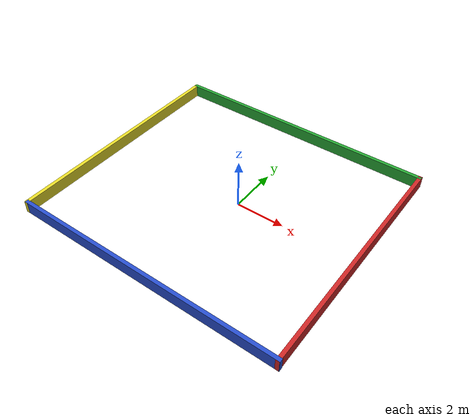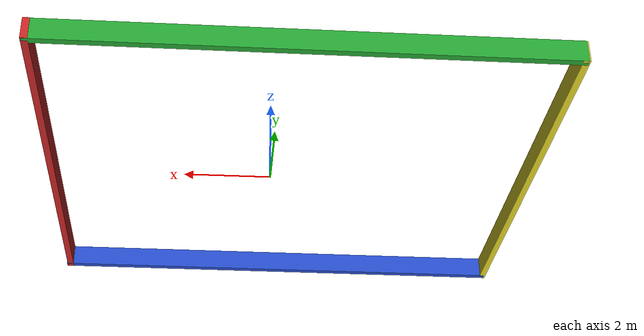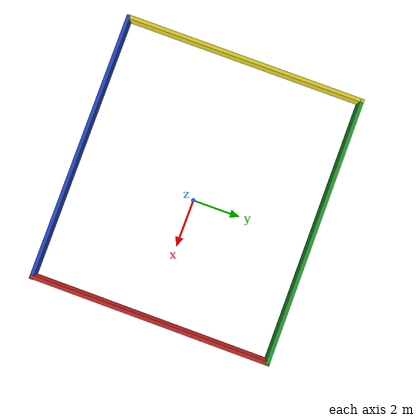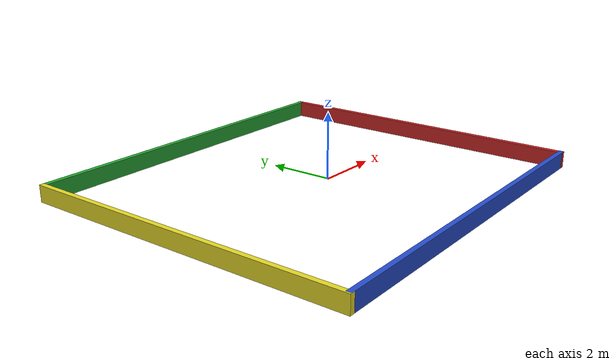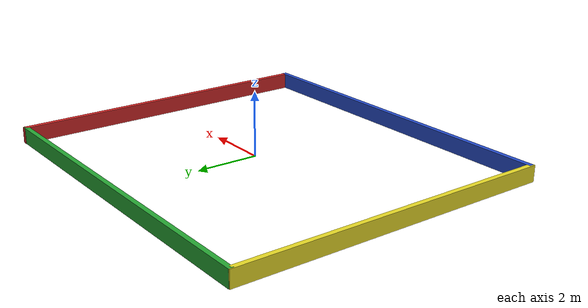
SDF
<?xml version='1.0'?>
<sdf version='1.7'>
  <model name='parede'>
    <link name='Wall_0'>
      <pose>-0.473327 -4.99675 0 0 -0 0</pose>
      <self_collide>0</self_collide>
      <enable_wind>0</enable_wind>
      <kinematic>0</kinematic>
      <gravity>1</gravity>
      <inertial>
        <mass>0.876022</mass>
        <pose>0 0 0 0 -0 0</pose>
        <inertia>
          <ixx>0.019893</ixx>
          <ixy>0</ixy>
          <ixz>0</ixz>
          <iyy>9.26886</iyy>
          <iyz>0</iyz>
          <izz>9.25225</izz>
        </inertia>
      </inertial>
      <visual name='Wall_0_Visual'>
        <pose>0 0 0.25 0 -0 0</pose>
        <geometry>
          <box>
            <size>11.2569 0.15 0.5</size>
          </box>
        </geometry>
        <material>
          <script>
            <uri>file://media/materials/scripts/gazebo.material</uri>
            <name>Gazebo/Blue</name>
          </script>
          <ambient>0 0.5 1 1</ambient>
          <shader type='pixel'>
            <normal_map>__default__</normal_map>
          </shader>
          <diffuse>0 0.5 1 1</diffuse>
          <specular>0 0.5 1 1</specular>
          <emissive>0 0.5 1 1</emissive>
        </material>
        <meta>
          <layer>0</layer>
        </meta>
        <transparency>0</transparency>
        <cast_shadows>1</cast_shadows>
      </visual>
      <collision name='Wall_0_Collision'>
        <laser_retro>0</laser_retro>
        <max_contacts>10</max_contacts>
        <pose>0 0 0.25 0 -0 0</pose>
        <geometry>
          <box>
            <size>11.2569 0.15 0.5</size>
          </box>
        </geometry>
        <surface>
          <friction>
            <ode>
              <mu>1</mu>
              <mu2>1</mu2>
              <fdir1>0 0 0</fdir1>
              <slip1>0</slip1>
              <slip2>0</slip2>
            </ode>
            <torsional>
              <coefficient>1</coefficient>
              <patch_radius>0</patch_radius>
              <surface_radius>0</surface_radius>
              <use_patch_radius>1</use_patch_radius>
              <ode>
                <slip>0</slip>
              </ode>
            </torsional>
          </friction>
          <bounce>
            <restitution_coefficient>0</restitution_coefficient>
            <threshold>1e+06</threshold>
          </bounce>
          <contact>
            <collide_without_contact>0</collide_without_contact>
            <collide_without_contact_bitmask>1</collide_without_contact_bitmask>
            <collide_bitmask>1</collide_bitmask>
            <ode>
              <soft_cfm>0</soft_cfm>
              <soft_erp>0.2</soft_erp>
              <kp>1e+13</kp>
              <kd>1</kd>
              <max_vel>0.01</max_vel>
              <min_depth>0</min_depth>
            </ode>
            <bullet>
              <split_impulse>1</split_impulse>
              <split_impulse_penetration_threshold>-0.01</split_impulse_penetration_threshold>
              <soft_cfm>0</soft_cfm>
              <soft_erp>0.2</soft_erp>
              <kp>1e+13</kp>
              <kd>1</kd>
            </bullet>
          </contact>
        </surface>
      </collision>
    </link>
    <link name='Wall_1'>
      <pose>-0.493247 5.00078 0 0 -0 3.14</pose>
      <self_collide>0</self_collide>
      <enable_wind>0</enable_wind>
      <kinematic>0</kinematic>
      <gravity>1</gravity>
      <inertial>
        <mass>1</mass>
        <pose>0 0 0 0 -0 0</pose>
        <inertia>
          <ixx>1</ixx>
          <ixy>0</ixy>
          <ixz>0</ixz>
          <iyy>1</iyy>
          <iyz>0</iyz>
          <izz>1</izz>
        </inertia>
      </inertial>
      <visual name='Wall_1_Visual'>
        <pose>0 0 0.25 0 -0 0</pose>
        <geometry>
          <box>
            <size>11.2569 0.15 0.5</size>
          </box>
        </geometry>
        <material>
          <script>
            <uri>file://media/materials/scripts/gazebo.material</uri>
            <name>Gazebo/Green</name>
          </script>
          <ambient>0 1 0 1</ambient>
          <shader type='pixel'>
            <normal_map>__default__</normal_map>
          </shader>
          <lighting>1</lighting>
          <emissive>0 1 0 1</emissive>
          <diffuse>0 1 0 1</diffuse>
          <specular>0 1 0 1</specular>
        </material>
        <meta>
          <layer>0</layer>
        </meta>
        <transparency>0</transparency>
        <cast_shadows>1</cast_shadows>
      </visual>
      <collision name='Wall_1_Collision'>
        <laser_retro>0</laser_retro>
        <max_contacts>10</max_contacts>
        <pose>0 0 0.25 0 -0 0</pose>
        <geometry>
          <box>
            <size>11.2569 0.15 0.5</size>
          </box>
        </geometry>
        <surface>
          <friction>
            <ode>
              <mu>1</mu>
              <mu2>1</mu2>
              <fdir1>0 0 0</fdir1>
              <slip1>0</slip1>
              <slip2>0</slip2>
            </ode>
            <torsional>
              <coefficient>1</coefficient>
              <patch_radius>0</patch_radius>
              <surface_radius>0</surface_radius>
              <use_patch_radius>1</use_patch_radius>
              <ode>
                <slip>0</slip>
              </ode>
            </torsional>
          </friction>
          <bounce>
            <restitution_coefficient>0</restitution_coefficient>
            <threshold>1e+06</threshold>
          </bounce>
          <contact>
            <collide_without_contact>0</collide_without_contact>
            <collide_without_contact_bitmask>1</collide_without_contact_bitmask>
            <collide_bitmask>1</collide_bitmask>
            <ode>
              <soft_cfm>0</soft_cfm>
              <soft_erp>0.2</soft_erp>
              <kp>1e+13</kp>
              <kd>1</kd>
              <max_vel>0.01</max_vel>
              <min_depth>0</min_depth>
            </ode>
            <bullet>
              <split_impulse>1</split_impulse>
              <split_impulse_penetration_threshold>-0.01</split_impulse_penetration_threshold>
              <soft_cfm>0</soft_cfm>
              <soft_erp>0.2</soft_erp>
              <kp>1e+13</kp>
              <kd>1</kd>
            </bullet>
          </contact>
        </surface>
      </collision>
    </link>
    <link name='Wall_2'>
      <pose>5.06978 0.001139 0 0 -0 1.57</pose>
      <self_collide>0</self_collide>
      <enable_wind>0</enable_wind>
      <kinematic>0</kinematic>
      <gravity>1</gravity>
      <inertial>
        <mass>1</mass>
        <pose>0 0 0 0 -0 0</pose>
        <inertia>
          <ixx>1</ixx>
          <ixy>0</ixy>
          <ixz>0</ixz>
          <iyy>1</iyy>
          <iyz>0</iyz>
          <izz>1</izz>
        </inertia>
      </inertial>
      <visual name='Wall_2_Visual'>
        <pose>0 0 0.25 0 -0 0</pose>
        <geometry>
          <box>
            <size>10.15 0.15 0.5</size>
          </box>
        </geometry>
        <material>
          <script>
            <uri>file://media/materials/scripts/gazebo.material</uri>
            <name>Gazebo/Red</name>
          </script>
          <ambient>1 0 0 1</ambient>
          <shader type='pixel'>
            <normal_map>__default__</normal_map>
          </shader>
          <diffuse>1 0 0 1</diffuse>
          <specular>1 0 0 1</specular>
          <emissive>1 0 0 1</emissive>
        </material>
        <meta>
          <layer>0</layer>
        </meta>
        <transparency>0</transparency>
        <cast_shadows>1</cast_shadows>
      </visual>
      <collision name='Wall_2_Collision'>
        <laser_retro>0</laser_retro>
        <max_contacts>10</max_contacts>
        <pose>0 0 0.25 0 -0 0</pose>
        <geometry>
          <box>
            <size>10.15 0.15 0.5</size>
          </box>
        </geometry>
        <surface>
          <friction>
            <ode>
              <mu>1</mu>
              <mu2>1</mu2>
              <fdir1>0 0 0</fdir1>
              <slip1>0</slip1>
              <slip2>0</slip2>
            </ode>
            <torsional>
              <coefficient>1</coefficient>
              <patch_radius>0</patch_radius>
              <surface_radius>0</surface_radius>
              <use_patch_radius>1</use_patch_radius>
              <ode>
                <slip>0</slip>
              </ode>
            </torsional>
          </friction>
          <bounce>
            <restitution_coefficient>0</restitution_coefficient>
            <threshold>1e+06</threshold>
          </bounce>
          <contact>
            <collide_without_contact>0</collide_without_contact>
            <collide_without_contact_bitmask>1</collide_without_contact_bitmask>
            <collide_bitmask>1</collide_bitmask>
            <ode>
              <soft_cfm>0</soft_cfm>
              <soft_erp>0.2</soft_erp>
              <kp>1e+13</kp>
              <kd>1</kd>
              <max_vel>0.01</max_vel>
              <min_depth>0</min_depth>
            </ode>
            <bullet>
              <split_impulse>1</split_impulse>
              <split_impulse_penetration_threshold>-0.01</split_impulse_penetration_threshold>
              <soft_cfm>0</soft_cfm>
              <soft_erp>0.2</soft_erp>
              <kp>1e+13</kp>
              <kd>1</kd>
            </bullet>
          </contact>
        </surface>
      </collision>
    </link>
    <link name='Wall_3'>
      <pose>-6.07017 0.000342 0 0 0 -1.57</pose>
      <self_collide>0</self_collide>
      <enable_wind>0</enable_wind>
      <kinematic>0</kinematic>
      <gravity>1</gravity>
      <inertial>
        <mass>1</mass>
        <pose>0 0 0 0 -0 0</pose>
        <inertia>
          <ixx>1</ixx>
          <ixy>0</ixy>
          <ixz>0</ixz>
          <iyy>1</iyy>
          <iyz>0</iyz>
          <izz>1</izz>
        </inertia>
      </inertial>
      <visual name='Wall_3_Visual'>
        <pose>0 0 0.25 0 -0 0</pose>
        <geometry>
          <box>
            <size>10.15 0.15 0.5</size>
          </box>
        </geometry>
        <material>
          <script>
            <uri>file://media/materials/scripts/gazebo.material</uri>
            <name>Gazebo/Yellow</name>
          </script>
          <ambient>0.5 0.5 0.5 1</ambient>
          <shader type='pixel'>
            <normal_map>__default__</normal_map>
          </shader>
          <diffuse>0.5 0.5 0 1</diffuse>
          <emissive>0.5 0.5 0 1</emissive>
          <specular>0.5 0.5 0 1</specular>
        </material>
        <meta>
          <layer>0</layer>
        </meta>
        <transparency>0</transparency>
        <cast_shadows>1</cast_shadows>
      </visual>
      <collision name='Wall_3_Collision'>
        <laser_retro>0</laser_retro>
        <max_contacts>10</max_contacts>
        <pose>0 0 0.25 0 -0 0</pose>
        <geometry>
          <box>
            <size>10.15 0.15 0.5</size>
          </box>
        </geometry>
        <surface>
          <friction>
            <ode>
              <mu>1</mu>
              <mu2>1</mu2>
              <fdir1>0 0 0</fdir1>
              <slip1>0</slip1>
              <slip2>0</slip2>
            </ode>
            <torsional>
              <coefficient>1</coefficient>
              <patch_radius>0</patch_radius>
              <surface_radius>0</surface_radius>
              <use_patch_radius>1</use_patch_radius>
              <ode>
                <slip>0</slip>
              </ode>
            </torsional>
          </friction>
          <bounce>
            <restitution_coefficient>0</restitution_coefficient>
            <threshold>1e+06</threshold>
          </bounce>
          <contact>
            <collide_without_contact>0</collide_without_contact>
            <collide_without_contact_bitmask>1</collide_without_contact_bitmask>
            <collide_bitmask>1</collide_bitmask>
            <ode>
              <soft_cfm>0</soft_cfm>
              <soft_erp>0.2</soft_erp>
              <kp>1e+13</kp>
              <kd>1</kd>
              <max_vel>0.01</max_vel>
              <min_depth>0</min_depth>
            </ode>
            <bullet>
              <split_impulse>1</split_impulse>
              <split_impulse_penetration_threshold>-0.01</split_impulse_penetration_threshold>
              <soft_cfm>0</soft_cfm>
              <soft_erp>0.2</soft_erp>
              <kp>1e+13</kp>
              <kd>1</kd>
            </bullet>
          </contact>
        </surface>
      </collision>
    </link>
    <static>1</static>
    <allow_auto_disable>1</allow_auto_disable>
  </model>
</sdf>
